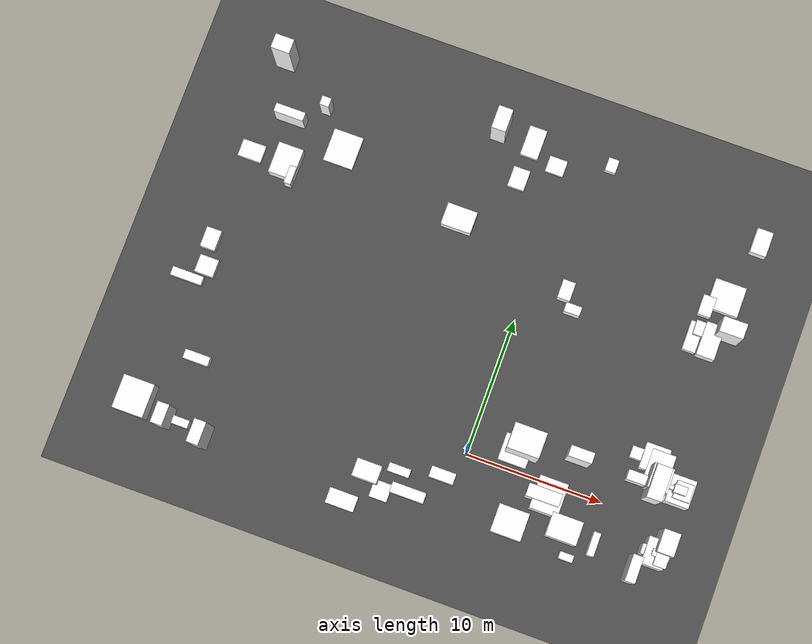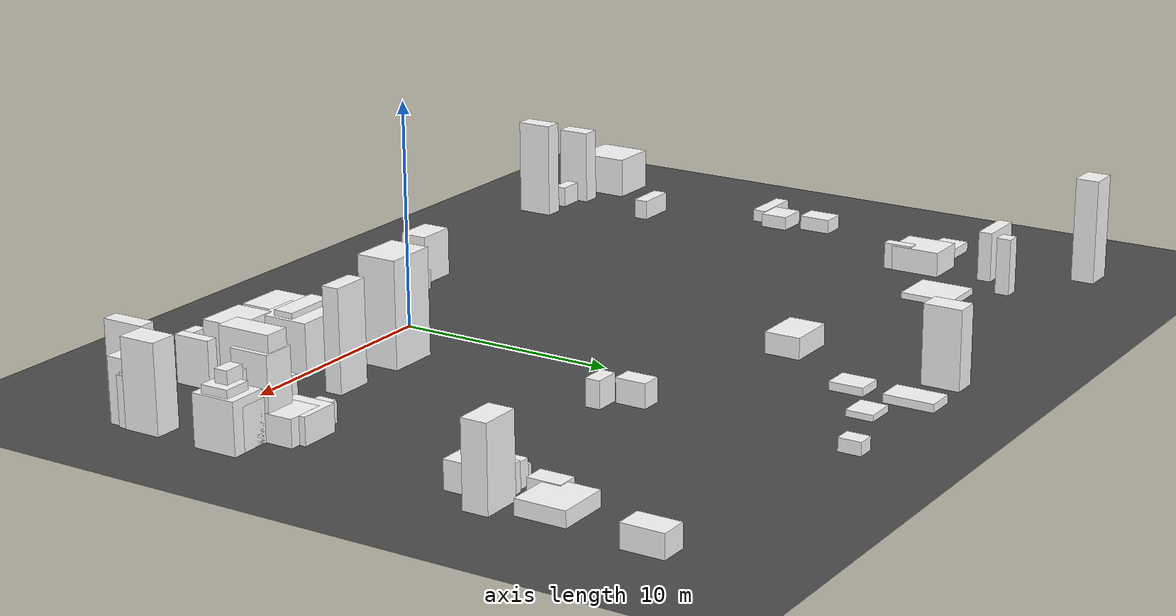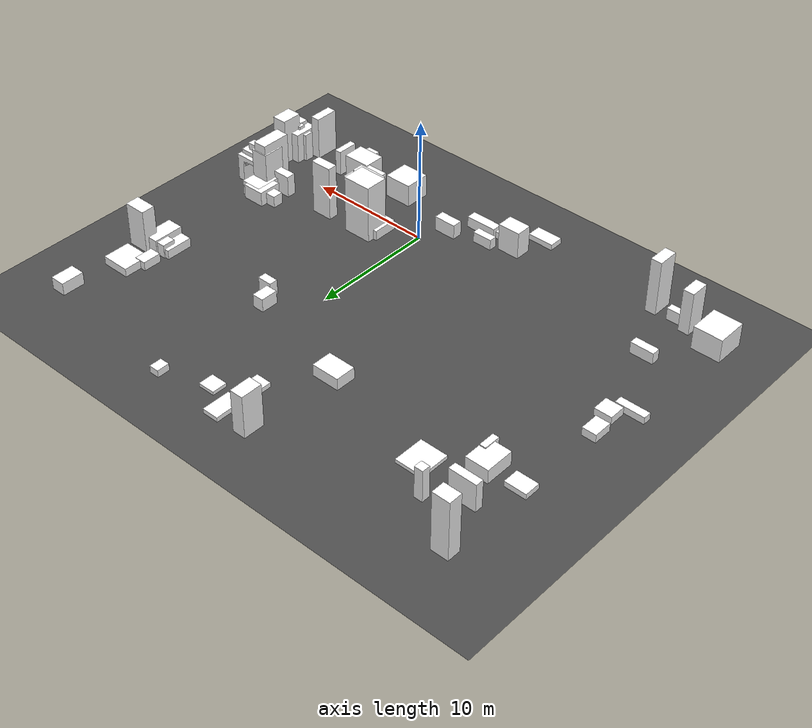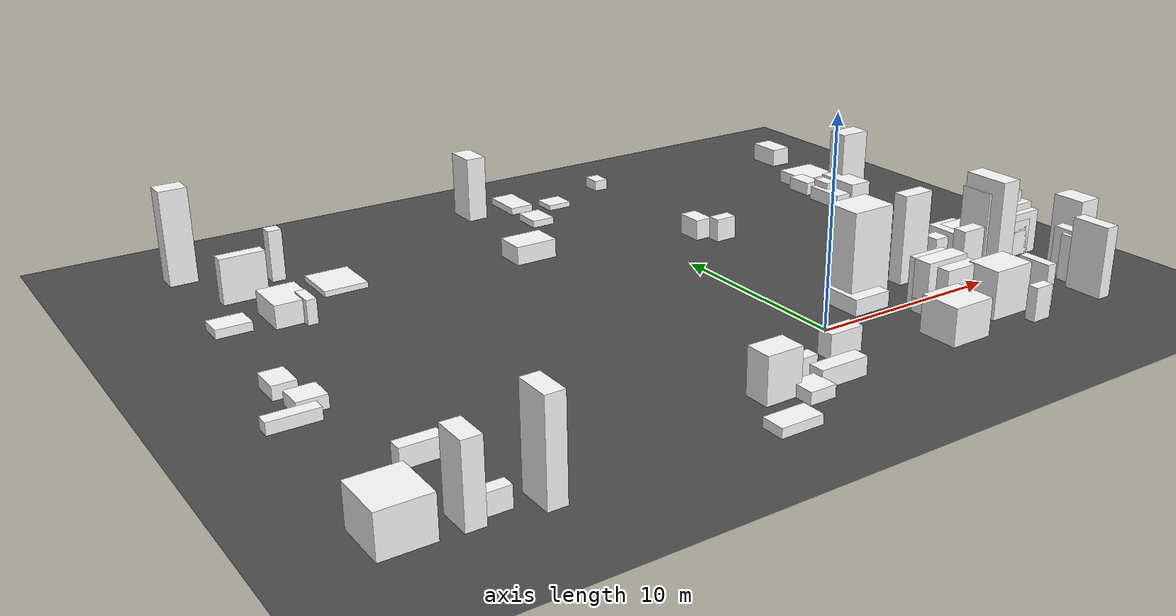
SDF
<sdf version="1.6">
 <world name="mirror_edge_world">
  <model name="ground_plane">
   <static>true</static>
   <link name="link">
    <collision name="collision">
     <geometry><plane><normal>0 0 1</normal><size>100 100</size></plane></geometry>
    </collision>
    <visual name="visual">
     <geometry><plane><normal>0 0 1</normal><size>100 100</size></plane></geometry>
     <material>
      <ambient>0.3 0.3 0.3 1</ambient>
      <diffuse>0.3 0.3 0.3 1</diffuse>
      <specular>0.5 0.5 0.5 1</specular>
      <emissive>0 0 0 1</emissive>
     </material>
    </visual>
   </link>
  </model>
  <model name="block_27_10">
   <static>true</static>
   <link name="link">
    <pose>11.426516982387149 4.082118956831466 0.47671777899596574 0 0 0</pose>
    <collision name="collision">
     <geometry><box><size>1.3210434698055173 0.854021670051142 0.9534355579919315</size></box></geometry>
    </collision>
    <visual name="visual">
     <geometry><box><size>1.3210434698055173 0.854021670051142 0.9534355579919315</size></box></geometry>
     <material>
      <ambient>1 1 1 1</ambient>
      <diffuse>1 1 1 1</diffuse>
      <specular>0.9 0.9 0.9 1</specular>
      <emissive>0.05 0.05 0.05 1</emissive>
     </material>
    </visual>
   </link>
  </model>
  <model name="block_27_14">
   <static>true</static>
   <link name="link">
    <pose>13.108828726909401 2.7777747662045487 1.7708005321837 0 0 0</pose>
    <visual name="visual">
     <geometry><box><size>1.4301884966578902 1.757032545012707 3.5416010643674</size></box></geometry>
     <material>
      <ambient>1 1 1 1</ambient>
      <diffuse>1 1 1 1</diffuse>
      <specular>0.9 0.9 0.9 1</specular>
      <emissive>0.05 0.05 0.05 1</emissive>
     </material>
    </visual>
   </link>
  </model>
  <model name="block_27_15">
   <static>true</static>
   <link name="link">
    <pose>-21.886552279144063 15.220352442096406 0.22221719165036846 0 0 0</pose>
    <collision name="collision">
     <geometry><box><size>1.7411276562074776 1.2764135613512766 0.4444343833007369</size></box></geometry>
    </collision>
    <visual name="visual">
     <geometry><box><size>1.7411276562074776 1.2764135613512766 0.4444343833007369</size></box></geometry>
     <material>
      <ambient>1 1 1 1</ambient>
      <diffuse>1 1 1 1</diffuse>
      <specular>0.9 0.9 0.9 1</specular>
      <emissive>0.05 0.05 0.05 1</emissive>
     </material>
    </visual>
   </link>
  </model>
  <model name="block_27_22">
   <static>true</static>
   <link name="link">
    <pose>-20.045397654636005 18.432199744427653 1.1438978253320722 0 0 0</pose>
    <visual name="visual">
     <geometry><box><size>2.2129965337974964 0.6387334085549263 2.2877956506641444</size></box></geometry>
     <material>
      <ambient>1 1 1 1</ambient>
      <diffuse>1 1 1 1</diffuse>
      <specular>0.9 0.9 0.9 1</specular>
      <emissive>0.05 0.05 0.05 1</emissive>
     </material>
    </visual>
   </link>
  </model>
  <model name="block_27_23">
   <static>true</static>
   <link name="link">
    <pose>6.00024279196905 -0.9804390596719905 1.2921147550394192 0 0 0</pose>
    <visual name="visual">
     <geometry><box><size>2.416726713537215 0.9288800814834139 2.5842295100788384</size></box></geometry>
     <material>
      <ambient>1 1 1 1</ambient>
      <diffuse>1 1 1 1</diffuse>
      <specular>0.9 0.9 0.9 1</specular>
      <emissive>0.05 0.05 0.05 1</emissive>
     </material>
    </visual>
   </link>
  </model>
  <model name="block_27_24">
   <static>true</static>
   <link name="link">
    <pose>13.387042423868223 -3.6565585900035953 1.7716536332143142 0 0 0</pose>
    <visual name="visual">
     <geometry><box><size>0.7336059995422295 1.930337880492734 3.5433072664286285</size></box></geometry>
     <material>
      <ambient>1 1 1 1</ambient>
      <diffuse>1 1 1 1</diffuse>
      <specular>0.9 0.9 0.9 1</specular>
      <emissive>0.05 0.05 0.05 1</emissive>
     </material>
    </visual>
   </link>
  </model>
  <model name="block_27_25">
   <static>true</static>
   <link name="link">
    <pose>-22.97956419469096 5.119387975682126 0.2848530815421374 0 0 0</pose>
    <collision name="collision">
     <geometry><box><size>2.3379477099783266 0.6514831800235019 0.5697061630842748</size></box></geometry>
    </collision>
    <visual name="visual">
     <geometry><box><size>2.3379477099783266 0.6514831800235019 0.5697061630842748</size></box></geometry>
     <material>
      <ambient>1 1 1 1</ambient>
      <diffuse>1 1 1 1</diffuse>
      <specular>0.9 0.9 0.9 1</specular>
      <emissive>0.05 0.05 0.05 1</emissive>
     </material>
    </visual>
   </link>
  </model>
  <model name="block_27_27">
   <static>true</static>
   <link name="link">
    <pose>7.423462069322902 2.3612756944535347 2.247491033434116 0 0 0</pose>
    <visual name="visual">
     <geometry><box><size>1.7070734021304705 0.7808105692431715 4.494982066868232</size></box></geometry>
     <material>
      <ambient>1 1 1 1</ambient>
      <diffuse>1 1 1 1</diffuse>
      <specular>0.9 0.9 0.9 1</specular>
      <emissive>0.05 0.05 0.05 1</emissive>
     </material>
    </visual>
   </link>
  </model>
  <model name="block_27_32">
   <static>true</static>
   <link name="link">
    <pose>-22.326049927471896 8.192770045158984 0.3350065924396007 0 0 0</pose>
    <collision name="collision">
     <geometry><box><size>1.120191175840115 1.5056806927850288 0.6700131848792014</size></box></geometry>
    </collision>
    <visual name="visual">
     <geometry><box><size>1.120191175840115 1.5056806927850288 0.6700131848792014</size></box></geometry>
     <material>
      <ambient>1 1 1 1</ambient>
      <diffuse>1 1 1 1</diffuse>
      <specular>0.9 0.9 0.9 1</specular>
      <emissive>0.05 0.05 0.05 1</emissive>
     </material>
    </visual>
   </link>
  </model>
  <model name="block_27_34">
   <static>true</static>
   <link name="link">
    <pose>-19.597969125208223 -4.765737114087452 0.48159607730210074 0 0 0</pose>
    <collision name="collision">
     <geometry><box><size>1.2099914458754961 0.5943195763736588 0.9631921546042015</size></box></geometry>
    </collision>
    <visual name="visual">
     <geometry><box><size>1.2099914458754961 0.5943195763736588 0.9631921546042015</size></box></geometry>
     <material>
      <ambient>1 1 1 1</ambient>
      <diffuse>1 1 1 1</diffuse>
      <specular>0.9 0.9 0.9 1</specular>
      <emissive>0.05 0.05 0.05 1</emissive>
     </material>
    </visual>
   </link>
  </model>
  <model name="block_27_35">
   <static>true</static>
   <link name="link">
    <pose>-20.7219698407586 -4.77534341426707 1.768051898256017 0 0 0</pose>
    <visual name="visual">
     <geometry><box><size>0.8578126719148231 1.549364056959704 3.536103796512034</size></box></geometry>
     <material>
      <ambient>1 1 1 1</ambient>
      <diffuse>1 1 1 1</diffuse>
      <specular>0.9 0.9 0.9 1</specular>
      <emissive>0.05 0.05 0.05 1</emissive>
     </material>
    </visual>
   </link>
  </model>
  <model name="block_27_36">
   <static>true</static>
   <link name="link">
    <pose>-18.564290401947368 14.355824582366893 0.6128889574946244 0 0 0</pose>
    <collision name="collision">
     <geometry><box><size>0.5063357293712614 1.3332489790165212 1.2257779149892487</size></box></geometry>
    </collision>
    <visual name="visual">
     <geometry><box><size>0.5063357293712614 1.3332489790165212 1.2257779149892487</size></box></geometry>
     <material>
      <ambient>1 1 1 1</ambient>
      <diffuse>1 1 1 1</diffuse>
      <specular>0.9 0.9 0.9 1</specular>
      <emissive>0.05 0.05 0.05 1</emissive>
     </material>
    </visual>
   </link>
  </model>
  <model name="block_27_37">
   <static>true</static>
   <link name="link">
    <pose>4.441302828105691 -3.519718196007546 0.9207663940691382 0 0 0</pose>
    <visual name="visual">
     <geometry><box><size>2.223664743687416 2.041329513281842 1.8415327881382764</size></box></geometry>
     <material>
      <ambient>1 1 1 1</ambient>
      <diffuse>1 1 1 1</diffuse>
      <specular>0.9 0.9 0.9 1</specular>
      <emissive>0.05 0.05 0.05 1</emissive>
     </material>
    </visual>
   </link>
  </model>
  <model name="block_27_45">
   <static>true</static>
   <link name="link">
    <pose>2.743411706130356 13.250303648615049 0.5366436297822872 0 0 0</pose>
    <collision name="collision">
     <geometry><box><size>0.9305814377927442 1.3848313937571628 1.0732872595645744</size></box></geometry>
    </collision>
    <visual name="visual">
     <geometry><box><size>0.9305814377927442 1.3848313937571628 1.0732872595645744</size></box></geometry>
     <material>
      <ambient>1 1 1 1</ambient>
      <diffuse>1 1 1 1</diffuse>
      <specular>0.9 0.9 0.9 1</specular>
      <emissive>0.05 0.05 0.05 1</emissive>
     </material>
    </visual>
   </link>
  </model>
  <model name="block_27_46">
   <static>true</static>
   <link name="link">
    <pose>12.49828479704206 4.1009242105887145 0.5982149394649925 0 0 0</pose>
    <collision name="collision">
     <geometry><box><size>1.80123622226925 1.8919963697947115 1.196429878929985</size></box></geometry>
    </collision>
    <visual name="visual">
     <geometry><box><size>1.80123622226925 1.8919963697947115 1.196429878929985</size></box></geometry>
     <material>
      <ambient>1 1 1 1</ambient>
      <diffuse>1 1 1 1</diffuse>
      <specular>0.9 0.9 0.9 1</specular>
      <emissive>0.05 0.05 0.05 1</emissive>
     </material>
    </visual>
   </link>
  </model>
  <model name="block_27_47">
   <static>true</static>
   <link name="link">
    <pose>-2.9228515500402317 -3.9600162825003418 0.4455765806284072 0 0 0</pose>
    <collision name="collision">
     <geometry><box><size>2.4995544622332657 0.7865399508177175 0.8911531612568144</size></box></geometry>
    </collision>
    <visual name="visual">
     <geometry><box><size>2.4995544622332657 0.7865399508177175 0.8911531612568144</size></box></geometry>
     <material>
      <ambient>1 1 1 1</ambient>
      <diffuse>1 1 1 1</diffuse>
      <specular>0.9 0.9 0.9 1</specular>
      <emissive>0.05 0.05 0.05 1</emissive>
     </material>
    </visual>
   </link>
  </model>
  <model name="block_27_48">
   <static>true</static>
   <link name="link">
    <pose>8.882546563708985 -4.424398276730714 0.8274539218239576 0 0 0</pose>
    <visual name="visual">
     <geometry><box><size>1.0191070149604557 0.5263577635093928 1.6549078436479152</size></box></geometry>
     <material>
      <ambient>1 1 1 1</ambient>
      <diffuse>1 1 1 1</diffuse>
      <specular>0.9 0.9 0.9 1</specular>
      <emissive>0.05 0.05 0.05 1</emissive>
     </material>
    </visual>
   </link>
  </model>
  <model name="block_27_49">
   <static>true</static>
   <link name="link">
    <pose>-0.9305131033858949 21.632238607072573 0.13865254489559425 0 0 0</pose>
    <collision name="collision">
     <geometry><box><size>1.332669767373693 1.211457697984372 0.2773050897911885</size></box></geometry>
    </collision>
    <visual name="visual">
     <geometry><box><size>1.332669767373693 1.211457697984372 0.2773050897911885</size></box></geometry>
     <material>
      <ambient>1 1 1 1</ambient>
      <diffuse>1 1 1 1</diffuse>
      <specular>0.9 0.9 0.9 1</specular>
      <emissive>0.05 0.05 0.05 1</emissive>
     </material>
    </visual>
   </link>
  </model>
  <model name="block_27_51">
   <static>true</static>
   <link name="link">
    <pose>-5.5853084453650474 22.834573354087485 1.73882756687932 0 0 0</pose>
    <visual name="visual">
     <geometry><box><size>1.0667168297656098 1.705590175865354 3.47765513375864</size></box></geometry>
     <material>
      <ambient>1 1 1 1</ambient>
      <diffuse>1 1 1 1</diffuse>
      <specular>0.9 0.9 0.9 1</specular>
      <emissive>0.05 0.05 0.05 1</emissive>
     </material>
    </visual>
   </link>
  </model>
  <model name="block_27_53">
   <static>true</static>
   <link name="link">
    <pose>-6.175099235422735 15.563514521444414 0.48119791124797123 0 0 0</pose>
    <collision name="collision">
     <geometry><box><size>2.239009267454184 1.6350662512953664 0.9623958224959425</size></box></geometry>
    </collision>
    <visual name="visual">
     <geometry><box><size>2.239009267454184 1.6350662512953664 0.9623958224959425</size></box></geometry>
     <material>
      <ambient>1 1 1 1</ambient>
      <diffuse>1 1 1 1</diffuse>
      <specular>0.9 0.9 0.9 1</specular>
      <emissive>0.05 0.05 0.05 1</emissive>
     </material>
    </visual>
   </link>
  </model>
  <model name="block_27_55">
   <static>true</static>
   <link name="link">
    <pose>-17.763731030161026 -5.135252966884733 2.2549411119128338 0 0 0</pose>
    <visual name="visual">
     <geometry><box><size>0.8711286990598905 1.6916104495410096 4.5098822238256675</size></box></geometry>
     <material>
      <ambient>1 1 1 1</ambient>
      <diffuse>1 1 1 1</diffuse>
      <specular>0.9 0.9 0.9 1</specular>
      <emissive>0.05 0.05 0.05 1</emissive>
     </material>
    </visual>
   </link>
  </model>
  <model name="block_27_61">
   <static>true</static>
   <link name="link">
    <pose>-21.820647111517836 22.32864144346706 2.403448257710224 0 0 0</pose>
    <visual name="visual">
     <geometry><box><size>1.388908310776983 1.0695308792748786 4.806896515420448</size></box></geometry>
     <material>
      <ambient>1 1 1 1</ambient>
      <diffuse>1 1 1 1</diffuse>
      <specular>0.9 0.9 0.9 1</specular>
      <emissive>0.05 0.05 0.05 1</emissive>
     </material>
    </visual>
   </link>
  </model>
  <model name="block_27_64">
   <static>true</static>
   <link name="link">
    <pose>-3.16338880900544 19.856881612647253 0.1857688324772352 0 0 0</pose>
    <collision name="collision">
     <geometry><box><size>1.2374117857312357 1.5410126196432852 0.3715376649544704</size></box></geometry>
    </collision>
    <visual name="visual">
     <geometry><box><size>1.2374117857312357 1.5410126196432852 0.3715376649544704</size></box></geometry>
     <material>
      <ambient>1 1 1 1</ambient>
      <diffuse>1 1 1 1</diffuse>
      <specular>0.9 0.9 0.9 1</specular>
      <emissive>0.05 0.05 0.05 1</emissive>
     </material>
    </visual>
   </link>
  </model>
  <model name="block_27_65">
   <static>true</static>
   <link name="link">
    <pose>-15.77394932204887 17.60414608964866 0.14506566772032642 0 0 0</pose>
    <collision name="collision">
     <geometry><box><size>2.2169891421127614 2.4662637009808277 0.29013133544065284</size></box></geometry>
    </collision>
    <visual name="visual">
     <geometry><box><size>2.2169891421127614 2.4662637009808277 0.29013133544065284</size></box></geometry>
     <material>
      <ambient>1 1 1 1</ambient>
      <diffuse>1 1 1 1</diffuse>
      <specular>0.9 0.9 0.9 1</specular>
      <emissive>0.05 0.05 0.05 1</emissive>
     </material>
    </visual>
   </link>
  </model>
  <model name="block_27_66">
   <static>true</static>
   <link name="link">
    <pose>12.254445575263645 13.22207047527213 0.3725899552586357 0 0 0</pose>
    <collision name="collision">
     <geometry><box><size>0.9662393823017292 2.1755848758240965 0.7451799105172714</size></box></geometry>
    </collision>
    <visual name="visual">
     <geometry><box><size>0.9662393823017292 2.1755848758240965 0.7451799105172714</size></box></geometry>
     <material>
      <ambient>1 1 1 1</ambient>
      <diffuse>1 1 1 1</diffuse>
      <specular>0.9 0.9 0.9 1</specular>
      <emissive>0.05 0.05 0.05 1</emissive>
     </material>
    </visual>
   </link>
  </model>
  <model name="block_28_2">
   <static>true</static>
   <link name="link">
    <pose>8.102131485303374 -2.6718057640616806 1.1892440049425907 0 0 0</pose>
    <visual name="visual">
     <geometry><box><size>2.2449952694579727 1.7139721396309124 2.3784880098851815</size></box></geometry>
     <material>
      <ambient>1 1 1 1</ambient>
      <diffuse>1 1 1 1</diffuse>
      <specular>0.9 0.9 0.9 1</specular>
      <emissive>0.05 0.05 0.05 1</emissive>
     </material>
    </visual>
   </link>
  </model>
  <model name="block_28_4">
   <static>true</static>
   <link name="link">
    <pose>-3.0410265570330886 22.704079097523138 0.1851033521027573 0 0 0</pose>
    <collision name="collision">
     <geometry><box><size>1.309565460472915 2.2535741399498317 0.3702067042055146</size></box></geometry>
    </collision>
    <visual name="visual">
     <geometry><box><size>1.309565460472915 2.2535741399498317 0.3702067042055146</size></box></geometry>
     <material>
      <ambient>1 1 1 1</ambient>
      <diffuse>1 1 1 1</diffuse>
      <specular>0.9 0.9 0.9 1</specular>
      <emissive>0.05 0.05 0.05 1</emissive>
     </material>
    </visual>
   </link>
  </model>
  <model name="block_28_5">
   <static>true</static>
   <link name="link">
    <pose>-19.227675937570933 15.234946442321242 0.5721087898435879 0 0 0</pose>
    <visual name="visual">
     <geometry><box><size>1.8625049085033585 2.3051706260909635 1.1442175796871759</size></box></geometry>
     <material>
      <ambient>1 1 1 1</ambient>
      <diffuse>1 1 1 1</diffuse>
      <specular>0.9 0.9 0.9 1</specular>
      <emissive>0.05 0.05 0.05 1</emissive>
     </material>
    </visual>
   </link>
  </model>
  <model name="block_28_6">
   <static>true</static>
   <link name="link">
    <pose>-17.866683999752706 19.9570948427886 1.3006034653807308 0 0 0</pose>
    <visual name="visual">
     <geometry><box><size>0.6908698831761277 0.6618458211397611 2.6012069307614616</size></box></geometry>
     <material>
      <ambient>1 1 1 1</ambient>
      <diffuse>1 1 1 1</diffuse>
      <specular>0.9 0.9 0.9 1</specular>
      <emissive>0.05 0.05 0.05 1</emissive>
     </material>
    </visual>
   </link>
  </model>
  <model name="block_28_10">
   <static>true</static>
   <link name="link">
    <pose>15.015790697809493 -1.2125113141635868 1.909922281701603 0 0 0</pose>
    <visual name="visual">
     <geometry><box><size>1.2078201968682671 1.659022406254062 3.819844563403206</size></box></geometry>
     <material>
      <ambient>1 1 1 1</ambient>
      <diffuse>1 1 1 1</diffuse>
      <specular>0.9 0.9 0.9 1</specular>
      <emissive>0.05 0.05 0.05 1</emissive>
     </material>
    </visual>
   </link>
  </model>
  <model name="block_28_11">
   <static>true</static>
   <link name="link">
    <pose>-6.055229439591226 -3.5652879506957267 1.1079467800575313 0 0 0</pose>
    <visual name="visual">
     <geometry><box><size>1.8185305492466397 1.299388505039451 2.2158935601150627</size></box></geometry>
     <material>
      <ambient>1 1 1 1</ambient>
      <diffuse>1 1 1 1</diffuse>
      <specular>0.9 0.9 0.9 1</specular>
      <emissive>0.05 0.05 0.05 1</emissive>
     </material>
    </visual>
   </link>
  </model>
  <model name="block_28_13">
   <static>true</static>
   <link name="link">
    <pose>3.6104674879500145 12.09795203962473 0.6040988686244344 0 0 0</pose>
    <collision name="collision">
     <geometry><box><size>1.17200941077006 0.6793705607264429 1.2081977372488688</size></box></geometry>
    </collision>
    <visual name="visual">
     <geometry><box><size>1.17200941077006 0.6793705607264429 1.2081977372488688</size></box></geometry>
     <material>
      <ambient>1 1 1 1</ambient>
      <diffuse>1 1 1 1</diffuse>
      <specular>0.9 0.9 0.9 1</specular>
      <emissive>0.05 0.05 0.05 1</emissive>
     </material>
    </visual>
   </link>
  </model>
  <model name="block_28_18">
   <static>true</static>
   <link name="link">
    <pose>-4.779647543813464 -4.478065790310997 0.2968918047468101 0 0 0</pose>
    <collision name="collision">
     <geometry><box><size>1.3228511327645687 1.2927438918307446 0.5937836094936202</size></box></geometry>
    </collision>
    <visual name="visual">
     <geometry><box><size>1.3228511327645687 1.2927438918307446 0.5937836094936202</size></box></geometry>
     <material>
      <ambient>1 1 1 1</ambient>
      <diffuse>1 1 1 1</diffuse>
      <specular>0.9 0.9 0.9 1</specular>
      <emissive>0.05 0.05 0.05 1</emissive>
     </material>
    </visual>
   </link>
  </model>
  <model name="block_28_19">
   <static>true</static>
   <link name="link">
    <pose>13.46141615970079 13.277482658462123 0.6138463060996441 0 0 0</pose>
    <collision name="collision">
     <geometry><box><size>1.3279303348581435 2.4933409547046876 1.2276926121992882</size></box></geometry>
    </collision>
    <visual name="visual">
     <geometry><box><size>1.3279303348581435 2.4933409547046876 1.2276926121992882</size></box></geometry>
     <material>
      <ambient>1 1 1 1</ambient>
      <diffuse>1 1 1 1</diffuse>
      <specular>0.9 0.9 0.9 1</specular>
      <emissive>0.05 0.05 0.05 1</emissive>
     </material>
    </visual>
   </link>
  </model>
  <model name="block_28_26">
   <static>true</static>
   <link name="link">
    <pose>13.066550405658347 13.879477807082871 0.5459123548262008 0 0 0</pose>
    <collision name="collision">
     <geometry><box><size>1.9080449512266917 1.0549634968874633 1.0918247096524016</size></box></geometry>
    </collision>
    <visual name="visual">
     <geometry><box><size>1.9080449512266917 1.0549634968874633 1.0918247096524016</size></box></geometry>
     <material>
      <ambient>1 1 1 1</ambient>
      <diffuse>1 1 1 1</diffuse>
      <specular>0.9 0.9 0.9 1</specular>
      <emissive>0.05 0.05 0.05 1</emissive>
     </material>
    </visual>
   </link>
  </model>
  <model name="block_28_28">
   <static>true</static>
   <link name="link">
    <pose>-23.188816095542393 -4.220378371466509 0.9494353022534545 0 0 0</pose>
    <visual name="visual">
     <geometry><box><size>2.2885238099514105 2.4685848910650883 1.898870604506909</size></box></geometry>
     <material>
      <ambient>1 1 1 1</ambient>
      <diffuse>1 1 1 1</diffuse>
      <specular>0.9 0.9 0.9 1</specular>
      <emissive>0.05 0.05 0.05 1</emissive>
     </material>
    </visual>
   </link>
  </model>
  <model name="block_28_29">
   <static>true</static>
   <link name="link">
    <pose>12.478216179256066 15.62952535321272 0.36027135890281364 0 0 0</pose>
    <collision name="collision">
     <geometry><box><size>0.9440105131489831 1.49326834063388 0.7205427178056273</size></box></geometry>
    </collision>
    <visual name="visual">
     <geometry><box><size>0.9440105131489831 1.49326834063388 0.7205427178056273</size></box></geometry>
     <material>
      <ambient>1 1 1 1</ambient>
      <diffuse>1 1 1 1</diffuse>
      <specular>0.9 0.9 0.9 1</specular>
      <emissive>0.05 0.05 0.05 1</emissive>
     </material>
    </visual>
   </link>
  </model>
  <model name="block_28_30">
   <static>true</static>
   <link name="link">
    <pose>3.620615003422877 1.984824347989723 2.3651666957234343 0 0 0</pose>
    <visual name="visual">
     <geometry><box><size>2.327783740442735 1.8488580770038114 4.730333391446869</size></box></geometry>
     <material>
      <ambient>1 1 1 1</ambient>
      <diffuse>1 1 1 1</diffuse>
      <specular>0.9 0.9 0.9 1</specular>
      <emissive>0.05 0.05 0.05 1</emissive>
     </material>
    </visual>
   </link>
  </model>
  <model name="block_28_34">
   <static>true</static>
   <link name="link">
    <pose>3.1944981780613624 1.3803043138939808 0.40789432874762993 0 0 0</pose>
    <collision name="collision">
     <geometry><box><size>2.0654047439527465 2.0035370847195972 0.8157886574952599</size></box></geometry>
    </collision>
    <visual name="visual">
     <geometry><box><size>2.0654047439527465 2.0035370847195972 0.8157886574952599</size></box></geometry>
     <material>
      <ambient>1 1 1 1</ambient>
      <diffuse>1 1 1 1</diffuse>
      <specular>0.9 0.9 0.9 1</specular>
      <emissive>0.05 0.05 0.05 1</emissive>
     </material>
    </visual>
   </link>
  </model>
  <model name="block_28_36">
   <static>true</static>
   <link name="link">
    <pose>-1.0588497904344365 -2.02257284640634 0.596684120180826 0 0 0</pose>
    <collision name="collision">
     <geometry><box><size>1.797620634404829 0.8152097481253138 1.193368240361652</size></box></geometry>
    </collision>
    <visual name="visual">
     <geometry><box><size>1.797620634404829 0.8152097481253138 1.193368240361652</size></box></geometry>
     <material>
      <ambient>1 1 1 1</ambient>
      <diffuse>1 1 1 1</diffuse>
      <specular>0.9 0.9 0.9 1</specular>
      <emissive>0.05 0.05 0.05 1</emissive>
     </material>
    </visual>
   </link>
  </model>
  <model name="block_28_38">
   <static>true</static>
   <link name="link">
    <pose>6.352803931390927 -0.9244841731514652 1.1632274638382039 0 0 0</pose>
    <visual name="visual">
     <geometry><box><size>2.0753632210338178 2.4059416733367796 2.3264549276764077</size></box></geometry>
     <material>
      <ambient>1 1 1 1</ambient>
      <diffuse>1 1 1 1</diffuse>
      <specular>0.9 0.9 0.9 1</specular>
      <emissive>0.05 0.05 0.05 1</emissive>
     </material>
    </visual>
   </link>
  </model>
  <model name="block_28_40">
   <static>true</static>
   <link name="link">
    <pose>14.458600080226653 14.28653025356973 1.7870535945053783 0 0 0</pose>
    <visual name="visual">
     <geometry><box><size>1.7539229823434217 1.1220933615780286 3.5741071890107565</size></box></geometry>
     <material>
      <ambient>1 1 1 1</ambient>
      <diffuse>1 1 1 1</diffuse>
      <specular>0.9 0.9 0.9 1</specular>
      <emissive>0.05 0.05 0.05 1</emissive>
     </material>
    </visual>
   </link>
  </model>
  <model name="block_28_41">
   <static>true</static>
   <link name="link">
    <pose>10.357199489547916 -2.9654711718509055 1.0486597241442135 0 0 0</pose>
    <visual name="visual">
     <geometry><box><size>0.519613338093436 1.7119694839186348 2.097319448288427</size></box></geometry>
     <material>
      <ambient>1 1 1 1</ambient>
      <diffuse>1 1 1 1</diffuse>
      <specular>0.9 0.9 0.9 1</specular>
      <emissive>0.05 0.05 0.05 1</emissive>
     </material>
    </visual>
   </link>
  </model>
  <model name="block_28_42">
   <static>true</static>
   <link name="link">
    <pose>5.816653843663268 -0.8526363382916093 0.3328143826234893 0 0 0</pose>
    <collision name="collision">
     <geometry><box><size>2.066563562937442 0.6211364478898813 0.6656287652469786</size></box></geometry>
    </collision>
    <visual name="visual">
     <geometry><box><size>2.066563562937442 0.6211364478898813 0.6656287652469786</size></box></geometry>
     <material>
      <ambient>1 1 1 1</ambient>
      <diffuse>1 1 1 1</diffuse>
      <specular>0.9 0.9 0.9 1</specular>
      <emissive>0.05 0.05 0.05 1</emissive>
     </material>
    </visual>
   </link>
  </model>
  <model name="block_28_45">
   <static>true</static>
   <link name="link">
    <pose>2.820262175634113 22.995679932144697 0.28839123183593973 0 0 0</pose>
    <collision name="collision">
     <geometry><box><size>0.7812639020123695 1.0052056603044581 0.5767824636718795</size></box></geometry>
    </collision>
    <visual name="visual">
     <geometry><box><size>0.7812639020123695 1.0052056603044581 0.5767824636718795</size></box></geometry>
     <material>
      <ambient>1 1 1 1</ambient>
      <diffuse>1 1 1 1</diffuse>
      <specular>0.9 0.9 0.9 1</specular>
      <emissive>0.05 0.05 0.05 1</emissive>
     </material>
    </visual>
   </link>
  </model>
  <model name="block_28_47">
   <static>true</static>
   <link name="link">
    <pose>-21.90815756387172 6.254255349520492 0.31720401504306406 0 0 0</pose>
    <collision name="collision">
     <geometry><box><size>1.3985829386678423 1.316927516470234 0.6344080300861281</size></box></geometry>
    </collision>
    <visual name="visual">
     <geometry><box><size>1.3985829386678423 1.316927516470234 0.6344080300861281</size></box></geometry>
     <material>
      <ambient>1 1 1 1</ambient>
      <diffuse>1 1 1 1</diffuse>
      <specular>0.9 0.9 0.9 1</specular>
      <emissive>0.05 0.05 0.05 1</emissive>
     </material>
    </visual>
   </link>
  </model>
  <model name="block_28_48">
   <static>true</static>
   <link name="link">
    <pose>13.057904870690436 2.377892097150828 2.1349073417277618 0 0 0</pose>
    <visual name="visual">
     <geometry><box><size>1.0997918664210289 2.416823800572714 4.2698146834555235</size></box></geometry>
     <material>
      <ambient>1 1 1 1</ambient>
      <diffuse>1 1 1 1</diffuse>
      <specular>0.9 0.9 0.9 1</specular>
      <emissive>0.05 0.05 0.05 1</emissive>
     </material>
    </visual>
   </link>
  </model>
  <model name="block_28_51">
   <static>true</static>
   <link name="link">
    <pose>11.96830318626877 2.413500348672607 0.8898885479864229 0 0 0</pose>
    <visual name="visual">
     <geometry><box><size>1.9489019313686455 0.7321871630466346 1.7797770959728458</size></box></geometry>
     <material>
      <ambient>1 1 1 1</ambient>
      <diffuse>1 1 1 1</diffuse>
      <specular>0.9 0.9 0.9 1</specular>
      <emissive>0.05 0.05 0.05 1</emissive>
     </material>
    </visual>
   </link>
  </model>
  <model name="block_28_52">
   <static>true</static>
   <link name="link">
    <pose>-7.122124195007512 -5.988932657539723 0.22935633728325516 0 0 0</pose>
    <collision name="collision">
     <geometry><box><size>2.101735518872375 1.1540408133728413 0.4587126745665103</size></box></geometry>
    </collision>
    <visual name="visual">
     <geometry><box><size>2.101735518872375 1.1540408133728413 0.4587126745665103</size></box></geometry>
     <material>
      <ambient>1 1 1 1</ambient>
      <diffuse>1 1 1 1</diffuse>
      <specular>0.9 0.9 0.9 1</specular>
      <emissive>0.05 0.05 0.05 1</emissive>
     </material>
    </visual>
   </link>
  </model>
  <model name="block_28_56">
   <static>true</static>
   <link name="link">
    <pose>-20.166750192065116 -0.14213603729661894 0.45889407327905596 0 0 0</pose>
    <collision name="collision">
     <geometry><box><size>1.8758670587990987 0.6820717624706762 0.9177881465581119</size></box></geometry>
    </collision>
    <visual name="visual">
     <geometry><box><size>1.8758670587990987 0.6820717624706762 0.9177881465581119</size></box></geometry>
     <material>
      <ambient>1 1 1 1</ambient>
      <diffuse>1 1 1 1</diffuse>
      <specular>0.9 0.9 0.9 1</specular>
      <emissive>0.05 0.05 0.05 1</emissive>
     </material>
    </visual>
   </link>
  </model>
  <model name="block_28_58">
   <static>true</static>
   <link name="link">
    <pose>12.99562588473038 3.5589537195221412 0.5983910943856567 0 0 0</pose>
    <visual name="visual">
     <geometry><box><size>1.731908515960968 2.395503380577969 1.1967821887713135</size></box></geometry>
     <material>
      <ambient>1 1 1 1</ambient>
      <diffuse>1 1 1 1</diffuse>
      <specular>0.9 0.9 0.9 1</specular>
      <emissive>0.05 0.05 0.05 1</emissive>
     </material>
    </visual>
   </link>
  </model>
  <model name="block_28_60">
   <static>true</static>
   <link name="link">
    <pose>-4.029876256125547 -2.7007166695268325 0.4349730948005741 0 0 0</pose>
    <collision name="collision">
     <geometry><box><size>1.5962580288043497 0.6335229321706777 0.8699461896011482</size></box></geometry>
    </collision>
    <visual name="visual">
     <geometry><box><size>1.5962580288043497 0.6335229321706777 0.8699461896011482</size></box></geometry>
     <material>
      <ambient>1 1 1 1</ambient>
      <diffuse>1 1 1 1</diffuse>
      <specular>0.9 0.9 0.9 1</specular>
      <emissive>0.05 0.05 0.05 1</emissive>
     </material>
    </visual>
   </link>
  </model>
  <model name="block_28_62">
   <static>true</static>
   <link name="link">
    <pose>14.645561550042181 21.224469414401405 0.5054717666835901 0 0 0</pose>
    <collision name="collision">
     <geometry><box><size>1.1901907859193985 1.8441931077753948 1.0109435333671801</size></box></geometry>
    </collision>
    <visual name="visual">
     <geometry><box><size>1.1901907859193985 1.8441931077753948 1.0109435333671801</size></box></geometry>
     <material>
      <ambient>1 1 1 1</ambient>
      <diffuse>1 1 1 1</diffuse>
      <specular>0.9 0.9 0.9 1</specular>
      <emissive>0.05 0.05 0.05 1</emissive>
     </material>
    </visual>
   </link>
  </model>
  <model name="block_28_65">
   <static>true</static>
   <link name="link">
    <pose>13.595793518268351 16.667579043865274 0.3418169204113248 0 0 0</pose>
    <collision name="collision">
     <geometry><box><size>2.291426526929059 2.2084091893018796 0.6836338408226496</size></box></geometry>
    </collision>
    <visual name="visual">
     <geometry><box><size>2.291426526929059 2.2084091893018796 0.6836338408226496</size></box></geometry>
     <material>
      <ambient>1 1 1 1</ambient>
      <diffuse>1 1 1 1</diffuse>
      <specular>0.9 0.9 0.9 1</specular>
      <emissive>0.05 0.05 0.05 1</emissive>
     </material>
    </visual>
   </link>
  </model>
  <model name="roadside_block_0_0_0">
   <static>true</static>
   <link name="link">
    <pose>15.024 -2.1033290080100766 1.139014643743577 0 0 0</pose>
    <collision name="collision">
     <geometry><box><size>1.0716424262160988 0.3721585083971002 2.278029287487154</size></box></geometry>
    </collision>
    <visual name="visual">
     <geometry><box><size>1.0716424262160988 0.3721585083971002 2.278029287487154</size></box></geometry>
     <material>
      <ambient>1 1 1 1</ambient>
      <diffuse>1 1 1 1</diffuse>
      <specular>0.9 0.9 0.9 1</specular>
      <emissive>0.05 0.05 0.05 1</emissive>
     </material>
    </visual>
   </link>
  </model>
  <model name="roadside_block_0_1_0">
   <static>true</static>
   <link name="link">
    <pose>14.994086615932726 -2.1033290080100766 1.4024352901562183 0 0 0</pose>
    <collision name="collision">
     <geometry><box><size>0.917096691435077 1.6905999529771056 2.8048705803124365</size></box></geometry>
    </collision>
    <visual name="visual">
     <geometry><box><size>0.917096691435077 1.6905999529771056 2.8048705803124365</size></box></geometry>
     <material>
      <ambient>1 1 1 1</ambient>
      <diffuse>1 1 1 1</diffuse>
      <specular>0.9 0.9 0.9 1</specular>
      <emissive>0.05 0.05 0.05 1</emissive>
     </material>
    </visual>
   </link>
  </model>
  <model name="roadside_block_0_2_0">
   <static>true</static>
   <link name="link">
    <pose>14.964173231865452 -2.1033290080100766 1.081382273967498 0 0 0</pose>
    <collision name="collision">
     <geometry><box><size>1.2198733838243871 0.6143458455346253 2.162764547934996</size></box></geometry>
    </collision>
    <visual name="visual">
     <geometry><box><size>1.2198733838243871 0.6143458455346253 2.162764547934996</size></box></geometry>
     <material>
      <ambient>1 1 1 1</ambient>
      <diffuse>1 1 1 1</diffuse>
      <specular>0.9 0.9 0.9 1</specular>
      <emissive>0.05 0.05 0.05 1</emissive>
     </material>
    </visual>
   </link>
  </model>
  <model name="roadside_block_0_3_0">
   <static>true</static>
   <link name="link">
    <pose>14.93425984779818 2.496670991989923 1.294386916320942 0 0 0</pose>
    <collision name="collision">
     <geometry><box><size>1.2242419719492947 1.2678285775309825 2.588773832641884</size></box></geometry>
    </collision>
    <visual name="visual">
     <geometry><box><size>1.2242419719492947 1.2678285775309825 2.588773832641884</size></box></geometry>
     <material>
      <ambient>1 1 1 1</ambient>
      <diffuse>1 1 1 1</diffuse>
      <specular>0.9 0.9 0.9 1</specular>
      <emissive>0.05 0.05 0.05 1</emissive>
     </material>
    </visual>
   </link>
  </model>
  <model name="roadside_block_0_4_0">
   <static>true</static>
   <link name="link">
    <pose>14.904346463730906 -2.1033290080100766 0.779294020630733 0 0 0</pose>
    <collision name="collision">
     <geometry><box><size>1.069171458818723 1.3116408695299444 1.558588041261466</size></box></geometry>
    </collision>
    <visual name="visual">
     <geometry><box><size>1.069171458818723 1.3116408695299444 1.558588041261466</size></box></geometry>
     <material>
      <ambient>1 1 1 1</ambient>
      <diffuse>1 1 1 1</diffuse>
      <specular>0.9 0.9 0.9 1</specular>
      <emissive>0.05 0.05 0.05 1</emissive>
     </material>
    </visual>
   </link>
  </model>
  <model name="roadside_block_0_5_0">
   <static>true</static>
   <link name="link">
    <pose>14.874433079663632 2.496670991989923 1.1081142884411572 0 0 0</pose>
    <collision name="collision">
     <geometry><box><size>0.3 0.5107200636844651 2.2162285768823144</size></box></geometry>
    </collision>
    <visual name="visual">
     <geometry><box><size>0.3 0.5107200636844651 2.2162285768823144</size></box></geometry>
     <material>
      <ambient>1 1 1 1</ambient>
      <diffuse>1 1 1 1</diffuse>
      <specular>0.9 0.9 0.9 1</specular>
      <emissive>0.05 0.05 0.05 1</emissive>
     </material>
    </visual>
   </link>
  </model>
  <model name="roadside_block_0_6_0">
   <static>true</static>
   <link name="link">
    <pose>14.84451969559636 2.496670991989923 0.658844786924339 0 0 0</pose>
    <collision name="collision">
     <geometry><box><size>0.4125068799058803 1.0687609332727552 1.317689573848678</size></box></geometry>
    </collision>
    <visual name="visual">
     <geometry><box><size>0.4125068799058803 1.0687609332727552 1.317689573848678</size></box></geometry>
     <material>
      <ambient>1 1 1 1</ambient>
      <diffuse>1 1 1 1</diffuse>
      <specular>0.9 0.9 0.9 1</specular>
      <emissive>0.05 0.05 0.05 1</emissive>
     </material>
    </visual>
   </link>
  </model>
  <model name="roadside_block_0_7_0">
   <static>true</static>
   <link name="link">
    <pose>14.814606311529086 2.496670991989923 1.1135410827101473 0 0 0</pose>
    <collision name="collision">
     <geometry><box><size>1.7242928650788447 2.0 2.2270821654202946</size></box></geometry>
    </collision>
    <visual name="visual">
     <geometry><box><size>1.7242928650788447 2.0 2.2270821654202946</size></box></geometry>
     <material>
      <ambient>1 1 1 1</ambient>
      <diffuse>1 1 1 1</diffuse>
      <specular>0.9 0.9 0.9 1</specular>
      <emissive>0.05 0.05 0.05 1</emissive>
     </material>
    </visual>
   </link>
  </model>
  <model name="roadside_block_0_8_0">
   <static>true</static>
   <link name="link">
    <pose>14.784692927461812 -2.1033290080100766 1.3802095410967243 0 0 0</pose>
    <collision name="collision">
     <geometry><box><size>1.0977768705472137 0.5004237019161382 2.7604190821934487</size></box></geometry>
    </collision>
    <visual name="visual">
     <geometry><box><size>1.0977768705472137 0.5004237019161382 2.7604190821934487</size></box></geometry>
     <material>
      <ambient>1 1 1 1</ambient>
      <diffuse>1 1 1 1</diffuse>
      <specular>0.9 0.9 0.9 1</specular>
      <emissive>0.05 0.05 0.05 1</emissive>
     </material>
    </visual>
   </link>
  </model>
  <model name="roadside_block_0_9_0">
   <static>true</static>
   <link name="link">
    <pose>14.75477954339454 2.496670991989923 0.7554647474900282 0 0 0</pose>
    <collision name="collision">
     <geometry><box><size>0.3759865205156152 1.2516469865826947 1.5109294949800565</size></box></geometry>
    </collision>
    <visual name="visual">
     <geometry><box><size>0.3759865205156152 1.2516469865826947 1.5109294949800565</size></box></geometry>
     <material>
      <ambient>1 1 1 1</ambient>
      <diffuse>1 1 1 1</diffuse>
      <specular>0.9 0.9 0.9 1</specular>
      <emissive>0.05 0.05 0.05 1</emissive>
     </material>
    </visual>
   </link>
  </model>
  <model name="roadside_block_0_10_0">
   <static>true</static>
   <link name="link">
    <pose>14.724866159327267 -2.1033290080100766 0.5 0 0 0</pose>
    <collision name="collision">
     <geometry><box><size>0.8274171596489014 0.6539144648898585 1.0</size></box></geometry>
    </collision>
    <visual name="visual">
     <geometry><box><size>0.8274171596489014 0.6539144648898585 1.0</size></box></geometry>
     <material>
      <ambient>1 1 1 1</ambient>
      <diffuse>1 1 1 1</diffuse>
      <specular>0.9 0.9 0.9 1</specular>
      <emissive>0.05 0.05 0.05 1</emissive>
     </material>
    </visual>
   </link>
  </model>
  <model name="roadside_block_0_11_0">
   <static>true</static>
   <link name="link">
    <pose>14.694952775259992 -2.1033290080100766 0.9488817189651063 0 0 0</pose>
    <collision name="collision">
     <geometry><box><size>1.506170803037815 0.8057364875250109 1.8977634379302126</size></box></geometry>
    </collision>
    <visual name="visual">
     <geometry><box><size>1.506170803037815 0.8057364875250109 1.8977634379302126</size></box></geometry>
     <material>
      <ambient>1 1 1 1</ambient>
      <diffuse>1 1 1 1</diffuse>
      <specular>0.9 0.9 0.9 1</specular>
      <emissive>0.05 0.05 0.05 1</emissive>
     </material>
    </visual>
   </link>
  </model>
  <model name="roadside_block_0_12_0">
   <static>true</static>
   <link name="link">
    <pose>14.66503939119272 2.496670991989923 1.5802040666994188 0 0 0</pose>
    <collision name="collision">
     <geometry><box><size>0.9091495660707365 0.6074727270227358 3.1604081333988376</size></box></geometry>
    </collision>
    <visual name="visual">
     <geometry><box><size>0.9091495660707365 0.6074727270227358 3.1604081333988376</size></box></geometry>
     <material>
      <ambient>1 1 1 1</ambient>
      <diffuse>1 1 1 1</diffuse>
      <specular>0.9 0.9 0.9 1</specular>
      <emissive>0.05 0.05 0.05 1</emissive>
     </material>
    </visual>
   </link>
  </model>
  <model name="roadside_block_0_13_0">
   <static>true</static>
   <link name="link">
    <pose>14.635126007125447 -2.1033290080100766 1.1142358352117663 0 0 0</pose>
    <collision name="collision">
     <geometry><box><size>0.3 1.3410302757712782 2.2284716704235326</size></box></geometry>
    </collision>
    <visual name="visual">
     <geometry><box><size>0.3 1.3410302757712782 2.2284716704235326</size></box></geometry>
     <material>
      <ambient>1 1 1 1</ambient>
      <diffuse>1 1 1 1</diffuse>
      <specular>0.9 0.9 0.9 1</specular>
      <emissive>0.05 0.05 0.05 1</emissive>
     </material>
    </visual>
   </link>
  </model>
  <model name="roadside_block_0_14_0">
   <static>true</static>
   <link name="link">
    <pose>14.605212623058172 2.496670991989923 0.892112503636848 0 0 0</pose>
    <collision name="collision">
     <geometry><box><size>1.1501285853507774 1.1158215048204245 1.784225007273696</size></box></geometry>
    </collision>
    <visual name="visual">
     <geometry><box><size>1.1501285853507774 1.1158215048204245 1.784225007273696</size></box></geometry>
     <material>
      <ambient>1 1 1 1</ambient>
      <diffuse>1 1 1 1</diffuse>
      <specular>0.9 0.9 0.9 1</specular>
      <emissive>0.05 0.05 0.05 1</emissive>
     </material>
    </visual>
   </link>
  </model>
  <model name="roadside_block_0_15_0">
   <static>true</static>
   <link name="link">
    <pose>14.5752992389909 2.496670991989923 0.6534922512422612 0 0 0</pose>
    <collision name="collision">
     <geometry><box><size>0.6146922642868746 1.251186411604075 1.3069845024845224</size></box></geometry>
    </collision>
    <visual name="visual">
     <geometry><box><size>0.6146922642868746 1.251186411604075 1.3069845024845224</size></box></geometry>
     <material>
      <ambient>1 1 1 1</ambient>
      <diffuse>1 1 1 1</diffuse>
      <specular>0.9 0.9 0.9 1</specular>
      <emissive>0.05 0.05 0.05 1</emissive>
     </material>
    </visual>
   </link>
  </model>
  <model name="roadside_block_0_16_0">
   <static>true</static>
   <link name="link">
    <pose>14.545385854923627 -2.1033290080100766 1.2499632630487967 0 0 0</pose>
    <collision name="collision">
     <geometry><box><size>1.5731588680593296 2.0 2.4999265260975934</size></box></geometry>
    </collision>
    <visual name="visual">
     <geometry><box><size>1.5731588680593296 2.0 2.4999265260975934</size></box></geometry>
     <material>
      <ambient>1 1 1 1</ambient>
      <diffuse>1 1 1 1</diffuse>
      <specular>0.9 0.9 0.9 1</specular>
      <emissive>0.05 0.05 0.05 1</emissive>
     </material>
    </visual>
   </link>
  </model>
  <model name="roadside_block_0_17_0">
   <static>true</static>
   <link name="link">
    <pose>14.515472470856352 2.496670991989923 0.9541281941785631 0 0 0</pose>
    <collision name="collision">
     <geometry><box><size>0.5967924275340836 0.747006795057394 1.9082563883571262</size></box></geometry>
    </collision>
    <visual name="visual">
     <geometry><box><size>0.5967924275340836 0.747006795057394 1.9082563883571262</size></box></geometry>
     <material>
      <ambient>1 1 1 1</ambient>
      <diffuse>1 1 1 1</diffuse>
      <specular>0.9 0.9 0.9 1</specular>
      <emissive>0.05 0.05 0.05 1</emissive>
     </material>
    </visual>
   </link>
  </model>
  <model name="roadside_block_0_18_0">
   <static>true</static>
   <link name="link">
    <pose>14.48555908678908 2.496670991989923 0.9242487073836845 0 0 0</pose>
    <collision name="collision">
     <geometry><box><size>1.2698482126763138 2.0 1.848497414767369</size></box></geometry>
    </collision>
    <visual name="visual">
     <geometry><box><size>1.2698482126763138 2.0 1.848497414767369</size></box></geometry>
     <material>
      <ambient>1 1 1 1</ambient>
      <diffuse>1 1 1 1</diffuse>
      <specular>0.9 0.9 0.9 1</specular>
      <emissive>0.05 0.05 0.05 1</emissive>
     </material>
    </visual>
   </link>
  </model>
  <model name="roadside_block_0_19_0">
   <static>true</static>
   <link name="link">
    <pose>14.455645702721807 2.496670991989923 1.0668915971814534 0 0 0</pose>
    <collision name="collision">
     <geometry><box><size>1.5344372238192132 1.1662540414603941 2.133783194362907</size></box></geometry>
    </collision>
    <visual name="visual">
     <geometry><box><size>1.5344372238192132 1.1662540414603941 2.133783194362907</size></box></geometry>
     <material>
      <ambient>1 1 1 1</ambient>
      <diffuse>1 1 1 1</diffuse>
      <specular>0.9 0.9 0.9 1</specular>
      <emissive>0.05 0.05 0.05 1</emissive>
     </material>
    </visual>
   </link>
  </model>
  <model name="roadside_block_0_20_0">
   <static>true</static>
   <link name="link">
    <pose>14.425732318654532 -2.1033290080100766 1.1655997455772076 0 0 0</pose>
    <collision name="collision">
     <geometry><box><size>1.840545953751505 0.7378860810551582 2.331199491154415</size></box></geometry>
    </collision>
    <visual name="visual">
     <geometry><box><size>1.840545953751505 0.7378860810551582 2.331199491154415</size></box></geometry>
     <material>
      <ambient>1 1 1 1</ambient>
      <diffuse>1 1 1 1</diffuse>
      <specular>0.9 0.9 0.9 1</specular>
      <emissive>0.05 0.05 0.05 1</emissive>
     </material>
    </visual>
   </link>
  </model>
  <model name="roadside_block_0_21_0">
   <static>true</static>
   <link name="link">
    <pose>14.39581893458726 2.496670991989923 0.9003297037043617 0 0 0</pose>
    <collision name="collision">
     <geometry><box><size>1.4871619002871004 0.3 1.8006594074087234</size></box></geometry>
    </collision>
    <visual name="visual">
     <geometry><box><size>1.4871619002871004 0.3 1.8006594074087234</size></box></geometry>
     <material>
      <ambient>1 1 1 1</ambient>
      <diffuse>1 1 1 1</diffuse>
      <specular>0.9 0.9 0.9 1</specular>
      <emissive>0.05 0.05 0.05 1</emissive>
     </material>
    </visual>
   </link>
  </model>
  <model name="roadside_block_0_22_0">
   <static>true</static>
   <link name="link">
    <pose>14.365905550519987 -2.1033290080100766 1.0213748301438863 0 0 0</pose>
    <collision name="collision">
     <geometry><box><size>1.1158066129756716 1.5340001526292655 2.0427496602877726</size></box></geometry>
    </collision>
    <visual name="visual">
     <geometry><box><size>1.1158066129756716 1.5340001526292655 2.0427496602877726</size></box></geometry>
     <material>
      <ambient>1 1 1 1</ambient>
      <diffuse>1 1 1 1</diffuse>
      <specular>0.9 0.9 0.9 1</specular>
      <emissive>0.05 0.05 0.05 1</emissive>
     </material>
    </visual>
   </link>
  </model>
  <model name="roadside_block_0_23_0">
   <static>true</static>
   <link name="link">
    <pose>14.335992166452712 2.496670991989923 1.4139573451332033 0 0 0</pose>
    <collision name="collision">
     <geometry><box><size>1.114229679949627 0.3 2.8279146902664065</size></box></geometry>
    </collision>
    <visual name="visual">
     <geometry><box><size>1.114229679949627 0.3 2.8279146902664065</size></box></geometry>
     <material>
      <ambient>1 1 1 1</ambient>
      <diffuse>1 1 1 1</diffuse>
      <specular>0.9 0.9 0.9 1</specular>
      <emissive>0.05 0.05 0.05 1</emissive>
     </material>
    </visual>
   </link>
  </model>
 </world>
</sdf>
